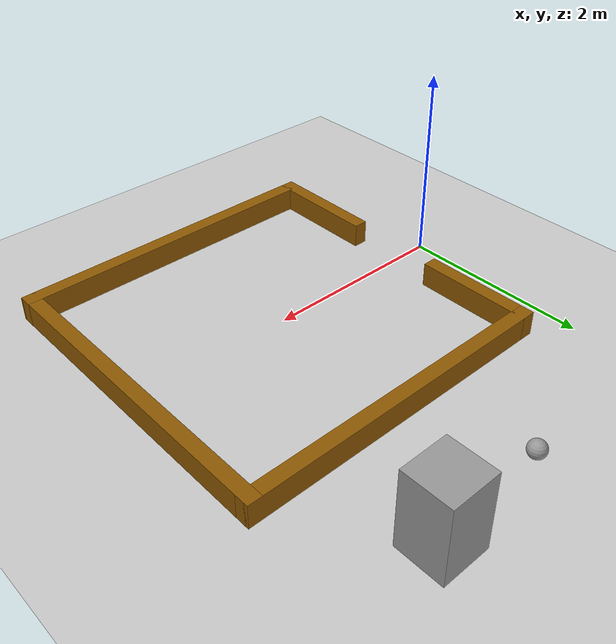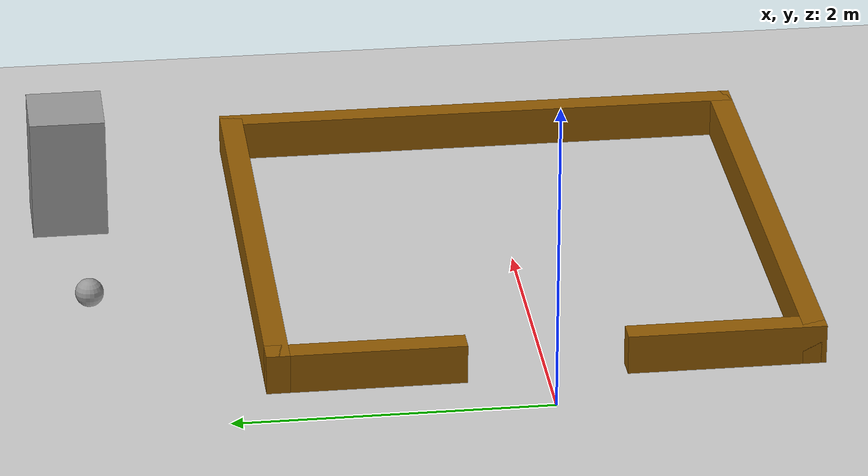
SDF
<sdf version="1.7">
 <world name="default">
  <light name="sun" type="directional">
   <pose>0 0 10 0 -0 0</pose>
   <diffuse>0.8 0.8 0.8 1</diffuse>
   <specular>0.2 0.2 0.2 1</specular>
   <attenuation>
    <range>1000</range>
    <constant>0.9</constant>
    <linear>0.01</linear>
    <quadratic>0.001</quadratic>
   </attenuation>
   <direction>-0.5 0.1 -0.9</direction>
   <spot><inner_angle>0</inner_angle><outer_angle>0</outer_angle><falloff>0</falloff></spot>
  </light>
  <model name="ground_plane">
   <static>1</static>
   <link name="link">
    <collision name="collision">
     <geometry><plane><normal>0 0 1</normal><size>100 100</size></plane></geometry>
     <surface><friction><ode><mu>100</mu><mu2>50</mu2></ode></friction></surface>
    </collision>
    <visual name="visual">
     <cast_shadows>0</cast_shadows>
     <geometry><plane><normal>0 0 1</normal><size>100 100</size></plane></geometry>
     <material>
      <script><uri>file://media/materials/scripts/gazebo.material</uri><name>Gazebo/Grey</name></script>
     </material>
    </visual>
   </link>
  </model>
  <gravity>0 0 -9.8</gravity>
  <magnetic_field>6e-06 2.3e-05 -4.2e-05</magnetic_field>
  <atmosphere type="adiabatic"/>
  <physics type="ode">
   <max_step_size>0.001</max_step_size>
   <real_time_factor>1</real_time_factor>
   <real_time_update_rate>1000</real_time_update_rate>
  </physics>
  <scene><ambient>0.4 0.4 0.4 1</ambient><background>0.7 0.7 0.7 1</background><shadows>1</shadows></scene>
  <spherical_coordinates>
   <surface_model>EARTH_WGS84</surface_model>
   <latitude_deg>0</latitude_deg>
   <longitude_deg>0</longitude_deg>
   <elevation>0</elevation>
   <heading_deg>0</heading_deg>
  </spherical_coordinates>
  <model name="Perimeter">
   <link name="Wall_4">
    <pose>-1.675 -0.6125 0 0 0 -1.5708</pose>
    <inertial>
     <mass>1</mass>
     <inertia><ixx>1</ixx><ixy>0</ixy><ixz>0</ixz><iyy>1</iyy><iyz>0</iyz><izz>1</izz></inertia>
    </inertial>
    <visual name="Wall_4_Visual">
     <geometry><box><size>3.5 0.15 0.5</size></box></geometry>
     <material>
      <script><uri>file://media/materials/scripts/gazebo.material</uri><name>Gazebo/Grey</name></script>
      <ambient>0.561 0.349 0.008 1</ambient>
      <shader type="pixel"><normal_map>__default__</normal_map></shader>
      <diffuse>0.7 0.7 0.7 1</diffuse>
      <specular>0.01 0.01 0.01 1</specular>
      <emissive>0 0 0 1</emissive>
     </material>
     <meta><layer>0</layer></meta>
    </visual>
    <collision name="Wall_4_Collision">
     <geometry><box><size>3.5 0.15 0.5</size></box></geometry>
     <surface>
      <friction>
       <ode><mu>1</mu><mu2>1</mu2><fdir1>0 0 0</fdir1><slip1>0</slip1><slip2>0</slip2></ode>
       <torsional>
        <coefficient>1</coefficient>
        <patch_radius>0</patch_radius>
        <surface_radius>0</surface_radius>
        <use_patch_radius>1</use_patch_radius>
        <ode><slip>0</slip></ode>
       </torsional>
      </friction>
      <bounce><restitution_coefficient>0</restitution_coefficient><threshold>1e+06</threshold></bounce>
      <contact>
       <collide_without_contact>0</collide_without_contact>
       <collide_without_contact_bitmask>1</collide_without_contact_bitmask>
       <collide_bitmask>1</collide_bitmask>
       <ode>
        <soft_cfm>0</soft_cfm>
        <soft_erp>0.2</soft_erp>
        <kp>1e+13</kp>
        <kd>1</kd>
        <max_vel>0.01</max_vel>
        <min_depth>0</min_depth>
       </ode>
       <bullet>
        <split_impulse>1</split_impulse>
        <split_impulse_penetration_threshold>-0.01</split_impulse_penetration_threshold>
        <soft_cfm>0</soft_cfm>
        <soft_erp>0.2</soft_erp>
        <kp>1e+13</kp>
        <kd>1</kd>
       </bullet>
      </contact>
     </surface>
    </collision>
   </link>
   <link name="Wall_5">
    <pose>0 -2.2875 0 0 -0 0</pose>
    <inertial>
     <mass>1</mass>
     <inertia><ixx>1</ixx><ixy>0</ixy><ixz>0</ixz><iyy>1</iyy><iyz>0</iyz><izz>1</izz></inertia>
    </inertial>
    <visual name="Wall_5_Visual">
     <geometry><box><size>3.5 0.15 0.5</size></box></geometry>
     <material>
      <script><uri>file://media/materials/scripts/gazebo.material</uri><name>Gazebo/Grey</name></script>
      <ambient>0.561 0.349 0.008 1</ambient>
      <shader type="pixel"><normal_map>__default__</normal_map></shader>
      <diffuse>0.7 0.7 0.7 1</diffuse>
      <specular>0.01 0.01 0.01 1</specular>
      <emissive>0 0 0 1</emissive>
     </material>
     <meta><layer>0</layer></meta>
    </visual>
    <collision name="Wall_5_Collision">
     <geometry><box><size>3.5 0.15 0.5</size></box></geometry>
     <surface>
      <friction>
       <ode><mu>1</mu><mu2>1</mu2><fdir1>0 0 0</fdir1><slip1>0</slip1><slip2>0</slip2></ode>
       <torsional>
        <coefficient>1</coefficient>
        <patch_radius>0</patch_radius>
        <surface_radius>0</surface_radius>
        <use_patch_radius>1</use_patch_radius>
        <ode><slip>0</slip></ode>
       </torsional>
      </friction>
      <bounce><restitution_coefficient>0</restitution_coefficient><threshold>1e+06</threshold></bounce>
      <contact>
       <collide_without_contact>0</collide_without_contact>
       <collide_without_contact_bitmask>1</collide_without_contact_bitmask>
       <collide_bitmask>1</collide_bitmask>
       <ode>
        <soft_cfm>0</soft_cfm>
        <soft_erp>0.2</soft_erp>
        <kp>1e+13</kp>
        <kd>1</kd>
        <max_vel>0.01</max_vel>
        <min_depth>0</min_depth>
       </ode>
       <bullet>
        <split_impulse>1</split_impulse>
        <split_impulse_penetration_threshold>-0.01</split_impulse_penetration_threshold>
        <soft_cfm>0</soft_cfm>
        <soft_erp>0.2</soft_erp>
        <kp>1e+13</kp>
        <kd>1</kd>
       </bullet>
      </contact>
     </surface>
    </collision>
   </link>
   <link name="Wall_6">
    <pose>1.675 -0.6125 0 0 -0 1.5708</pose>
    <inertial>
     <mass>1</mass>
     <inertia><ixx>1</ixx><ixy>0</ixy><ixz>0</ixz><iyy>1</iyy><iyz>0</iyz><izz>1</izz></inertia>
    </inertial>
    <visual name="Wall_6_Visual">
     <geometry><box><size>3.5 0.15 0.5</size></box></geometry>
     <material>
      <script><uri>file://media/materials/scripts/gazebo.material</uri><name>Gazebo/Grey</name></script>
      <ambient>0.561 0.349 0.008 1</ambient>
      <shader type="pixel"><normal_map>__default__</normal_map></shader>
      <diffuse>0.7 0.7 0.7 1</diffuse>
      <specular>0.01 0.01 0.01 1</specular>
      <emissive>0 0 0 1</emissive>
     </material>
     <meta><layer>0</layer></meta>
    </visual>
    <collision name="Wall_6_Collision">
     <geometry><box><size>3.5 0.15 0.5</size></box></geometry>
     <surface>
      <friction>
       <ode><mu>1</mu><mu2>1</mu2><fdir1>0 0 0</fdir1><slip1>0</slip1><slip2>0</slip2></ode>
       <torsional>
        <coefficient>1</coefficient>
        <patch_radius>0</patch_radius>
        <surface_radius>0</surface_radius>
        <use_patch_radius>1</use_patch_radius>
        <ode><slip>0</slip></ode>
       </torsional>
      </friction>
      <bounce><restitution_coefficient>0</restitution_coefficient><threshold>1e+06</threshold></bounce>
      <contact>
       <collide_without_contact>0</collide_without_contact>
       <collide_without_contact_bitmask>1</collide_without_contact_bitmask>
       <collide_bitmask>1</collide_bitmask>
       <ode>
        <soft_cfm>0</soft_cfm>
        <soft_erp>0.2</soft_erp>
        <kp>1e+13</kp>
        <kd>1</kd>
        <max_vel>0.01</max_vel>
        <min_depth>0</min_depth>
       </ode>
       <bullet>
        <split_impulse>1</split_impulse>
        <split_impulse_penetration_threshold>-0.01</split_impulse_penetration_threshold>
        <soft_cfm>0</soft_cfm>
        <soft_erp>0.2</soft_erp>
        <kp>1e+13</kp>
        <kd>1</kd>
       </bullet>
      </contact>
     </surface>
    </collision>
   </link>
   <link name="Wall_7">
    <pose>1.125 1.0625 0 0 -0 3.14159</pose>
    <inertial>
     <mass>1</mass>
     <inertia><ixx>1</ixx><ixy>0</ixy><ixz>0</ixz><iyy>1</iyy><iyz>0</iyz><izz>1</izz></inertia>
    </inertial>
    <visual name="Wall_7_Visual">
     <geometry><box><size>1.25 0.15 0.5</size></box></geometry>
     <material>
      <script><uri>file://media/materials/scripts/gazebo.material</uri><name>Gazebo/Grey</name></script>
      <ambient>0.561 0.349 0.008 1</ambient>
      <shader type="pixel"><normal_map>__default__</normal_map></shader>
      <diffuse>0.7 0.7 0.7 1</diffuse>
      <specular>0.01 0.01 0.01 1</specular>
      <emissive>0 0 0 1</emissive>
     </material>
     <meta><layer>0</layer></meta>
    </visual>
    <collision name="Wall_7_Collision">
     <geometry><box><size>1.25 0.15 0.5</size></box></geometry>
     <surface>
      <friction>
       <ode><mu>1</mu><mu2>1</mu2><fdir1>0 0 0</fdir1><slip1>0</slip1><slip2>0</slip2></ode>
       <torsional>
        <coefficient>1</coefficient>
        <patch_radius>0</patch_radius>
        <surface_radius>0</surface_radius>
        <use_patch_radius>1</use_patch_radius>
        <ode><slip>0</slip></ode>
       </torsional>
      </friction>
      <bounce><restitution_coefficient>0</restitution_coefficient><threshold>1e+06</threshold></bounce>
      <contact>
       <collide_without_contact>0</collide_without_contact>
       <collide_without_contact_bitmask>1</collide_without_contact_bitmask>
       <collide_bitmask>1</collide_bitmask>
       <ode>
        <soft_cfm>0</soft_cfm>
        <soft_erp>0.2</soft_erp>
        <kp>1e+13</kp>
        <kd>1</kd>
        <max_vel>0.01</max_vel>
        <min_depth>0</min_depth>
       </ode>
       <bullet>
        <split_impulse>1</split_impulse>
        <split_impulse_penetration_threshold>-0.01</split_impulse_penetration_threshold>
        <soft_cfm>0</soft_cfm>
        <soft_erp>0.2</soft_erp>
        <kp>1e+13</kp>
        <kd>1</kd>
       </bullet>
      </contact>
     </surface>
    </collision>
   </link>
   <link name="Wall_9">
    <pose>-1.125 1.0625 0 0 -0 0</pose>
    <inertial>
     <mass>1</mass>
     <inertia><ixx>1</ixx><ixy>0</ixy><ixz>0</ixz><iyy>1</iyy><iyz>0</iyz><izz>1</izz></inertia>
    </inertial>
    <visual name="Wall_9_Visual">
     <geometry><box><size>1.25 0.15 0.5</size></box></geometry>
     <material>
      <script><uri>file://media/materials/scripts/gazebo.material</uri><name>Gazebo/Grey</name></script>
      <ambient>0.561 0.349 0.008 1</ambient>
      <shader type="pixel"><normal_map>__default__</normal_map></shader>
      <diffuse>0.7 0.7 0.7 1</diffuse>
      <specular>0.01 0.01 0.01 1</specular>
      <emissive>0 0 0 1</emissive>
     </material>
     <meta><layer>0</layer></meta>
    </visual>
    <collision name="Wall_9_Collision">
     <geometry><box><size>1.25 0.15 0.5</size></box></geometry>
     <surface>
      <friction>
       <ode><mu>1</mu><mu2>1</mu2><fdir1>0 0 0</fdir1><slip1>0</slip1><slip2>0</slip2></ode>
       <torsional>
        <coefficient>1</coefficient>
        <patch_radius>0</patch_radius>
        <surface_radius>0</surface_radius>
        <use_patch_radius>1</use_patch_radius>
        <ode><slip>0</slip></ode>
       </torsional>
      </friction>
      <bounce><restitution_coefficient>0</restitution_coefficient><threshold>1e+06</threshold></bounce>
      <contact>
       <collide_without_contact>0</collide_without_contact>
       <collide_without_contact_bitmask>1</collide_without_contact_bitmask>
       <collide_bitmask>1</collide_bitmask>
       <ode>
        <soft_cfm>0</soft_cfm>
        <soft_erp>0.2</soft_erp>
        <kp>1e+13</kp>
        <kd>1</kd>
        <max_vel>0.01</max_vel>
        <min_depth>0</min_depth>
       </ode>
       <bullet>
        <split_impulse>1</split_impulse>
        <split_impulse_penetration_threshold>-0.01</split_impulse_penetration_threshold>
        <soft_cfm>0</soft_cfm>
        <soft_erp>0.2</soft_erp>
        <kp>1e+13</kp>
        <kd>1</kd>
       </bullet>
      </contact>
     </surface>
    </collision>
   </link>
   <static>1</static>
   <pose>1.5 -3e-06 0 0 -0 1.5708</pose>
  </model>
  <model name="unit_box">
   <pose>2.92467 2.82614 0.400953 -0 -0 -0</pose>
   <link name="link">
    <inertial>
     <mass>1</mass>
     <inertia>
      <ixx>0.166667</ixx>
      <ixy>0</ixy>
      <ixz>0</ixz>
      <iyy>0.166667</iyy>
      <iyz>0</iyz>
      <izz>0.166667</izz>
     </inertia>
    </inertial>
    <collision name="collision">
     <geometry><box><size>0.500578 0.489975 0.801907</size></box></geometry>
    </collision>
    <visual name="visual">
     <geometry><box><size>0.500578 0.489975 0.801907</size></box></geometry>
     <material>
      <script><name>Gazebo/Grey</name><uri>file://media/materials/scripts/gazebo.material</uri></script>
     </material>
    </visual>
   </link>
  </model>
  <model name="unit_sphere">
   <pose>1.668 2.7607 0.091665 0 -0 0</pose>
   <link name="link">
    <inertial>
     <mass>1</mass>
     <inertia><ixx>0.1</ixx><ixy>0</ixy><ixz>0</ixz><iyy>0.1</iyy><iyz>0</iyz><izz>0.1</izz></inertia>
    </inertial>
    <collision name="collision"><geometry><sphere><radius>0.091665</radius></sphere></geometry></collision>
    <visual name="visual">
     <geometry><sphere><radius>0.091665</radius></sphere></geometry>
     <material>
      <script><name>Gazebo/Grey</name><uri>file://media/materials/scripts/gazebo.material</uri></script>
     </material>
    </visual>
   </link>
  </model>
 </world>
</sdf>
